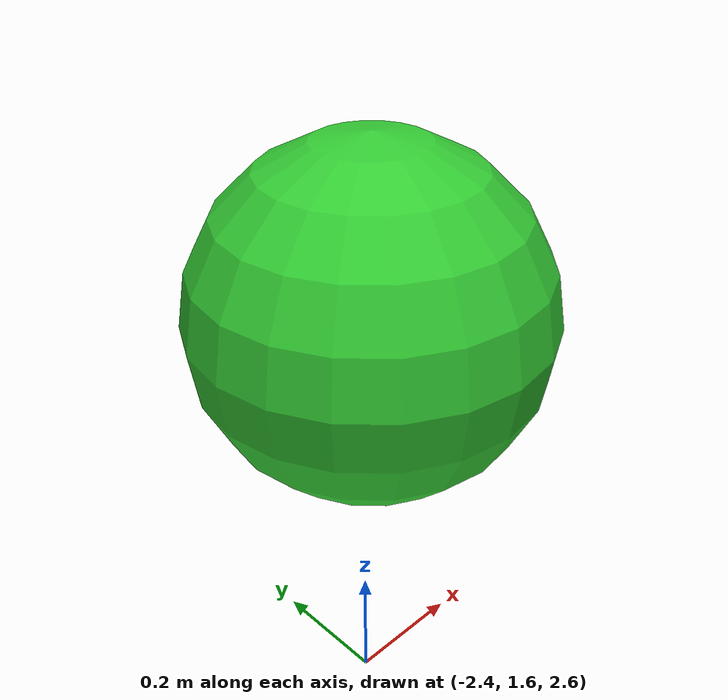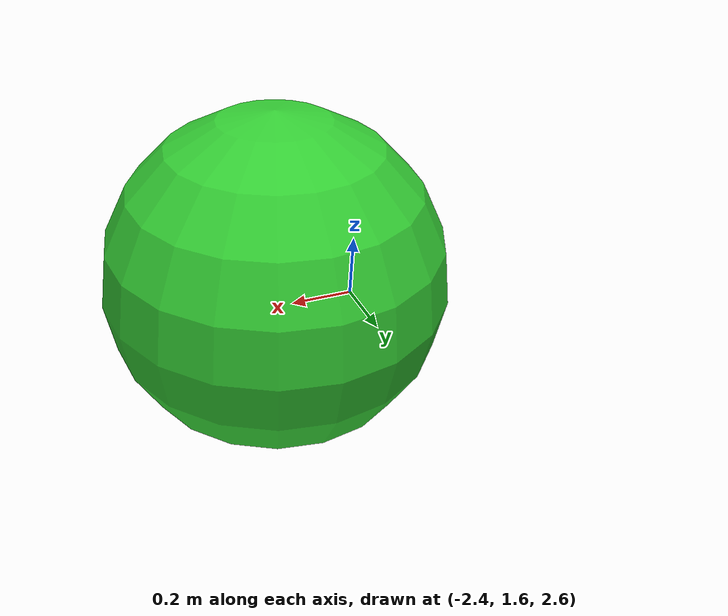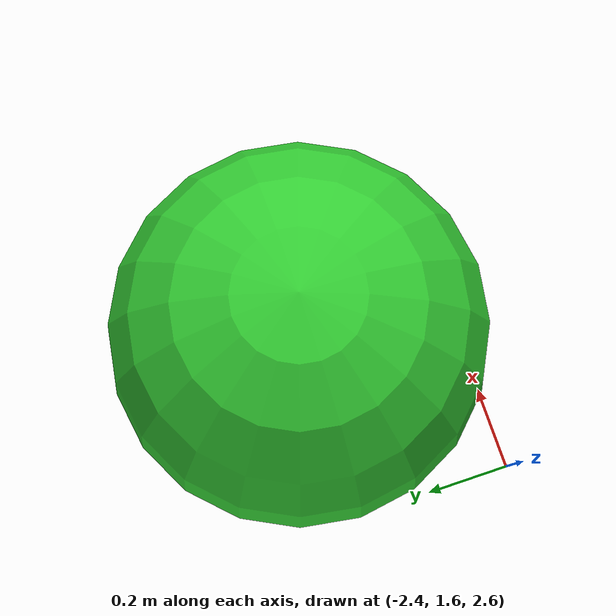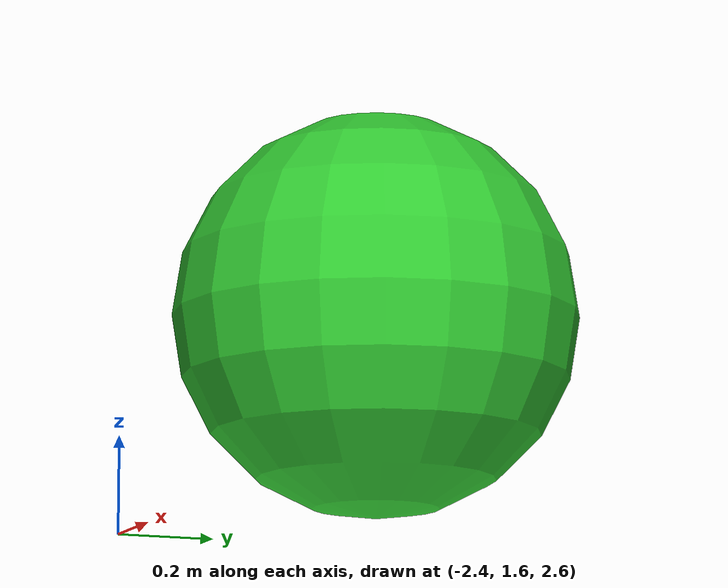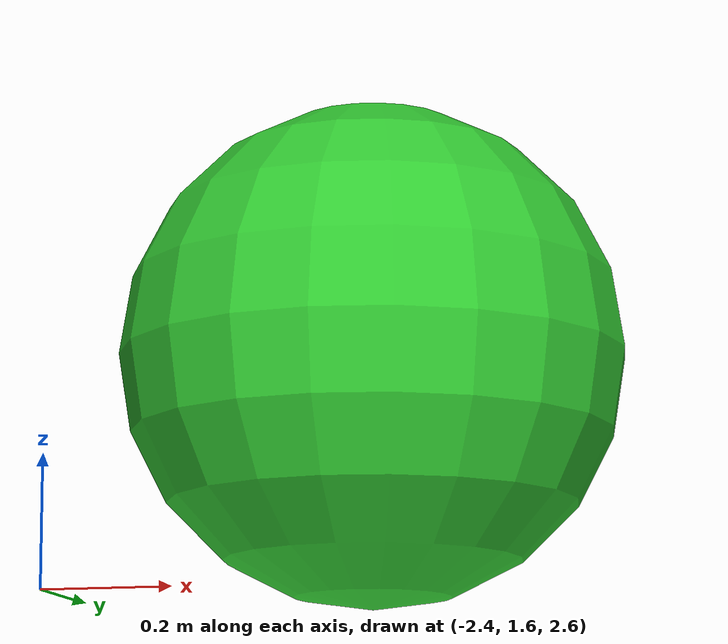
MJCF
<mujoco model="scene6_scale_change">
  <compiler angle="radian"/>

  <option timestep="0.002" gravity="0 0 -9.81">
    <flag contact="disable"/>
  </option>

  <visual>
    <global offwidth="800" offheight="800"/>
    <quality shadowsize="4096"/>
  </visual>

  <asset>
    <texture name="white_skybox"
             type="skybox"
             builtin="flat"
             width="512"
             height="512"
             rgb1="1 1 1"
             rgb2="1 1 1"/>
    <material name="white_floor" rgba="1 1 1 1" reflectance="0"/>
  </asset>

  <worldbody>
    <light directional="true" pos="0 0 5" dir="0 0 -1" diffuse="0.8 0.8 0.8"/>
    <light directional="true" pos="2 2 5" dir="-0.5 -0.5 -1" diffuse="0.4 0.4 0.4"/>

    <geom name="floor" type="plane" size="10 10 0.1" material="white_floor" pos="0 0 -0.5"/>

    <!-- Target at midpoint of motion -->
    <body name="target" pos="0 0 1.5">
      <site name="target_site" size="0.01" rgba="1 0 0 0"/>
    </body>

    <!-- Sphere moving from far to near -->
    <body name="sphere" pos="-2.0 2.0 3.0">
      <freejoint/>
      <geom name="sphere_geom" type="sphere" size="0.4" rgba="0.2 0.8 0.2 1" mass="1"/>
    </body>

    <!-- Scaled 2.0x for 800x800 square resolution — sphere travels to corners at (±2, 2, 3) -->
    <camera name="cam0" pos="6.0 0 4.0" mode="targetbody" target="target" fovy="50"/>
    <camera name="cam1" pos="0 6.0 4.0" mode="targetbody" target="target" fovy="50"/>
    <camera name="cam2" pos="-6.0 0 4.0" mode="targetbody" target="target" fovy="50"/>
    <camera name="cam3" pos="0 -6.0 4.0" mode="targetbody" target="target" fovy="50"/>
    <camera name="cam4" pos="5.0 5.0 6.0" mode="targetbody" target="target" fovy="50"/>
    <camera name="cam5" pos="-5.0 5.0 6.0" mode="targetbody" target="target" fovy="50"/>
    <camera name="cam6" pos="5.0 -5.0 6.0" mode="targetbody" target="target" fovy="50"/>
    <camera name="cam7" pos="-5.0 -5.0 6.0" mode="targetbody" target="target" fovy="50"/>
    <camera name="cam8" pos="4.0 0 1.0" mode="targetbody" target="target" fovy="55"/>
    <camera name="cam9" pos="-4.0 0 1.0" mode="targetbody" target="target" fovy="55"/>
    <camera name="cam10" pos="0 0 9.0" mode="targetbody" target="target" fovy="45"/>
    <camera name="cam11" pos="3.0 3.0 8.0" mode="targetbody" target="target" fovy="45"/>
  </worldbody>
</mujoco>
